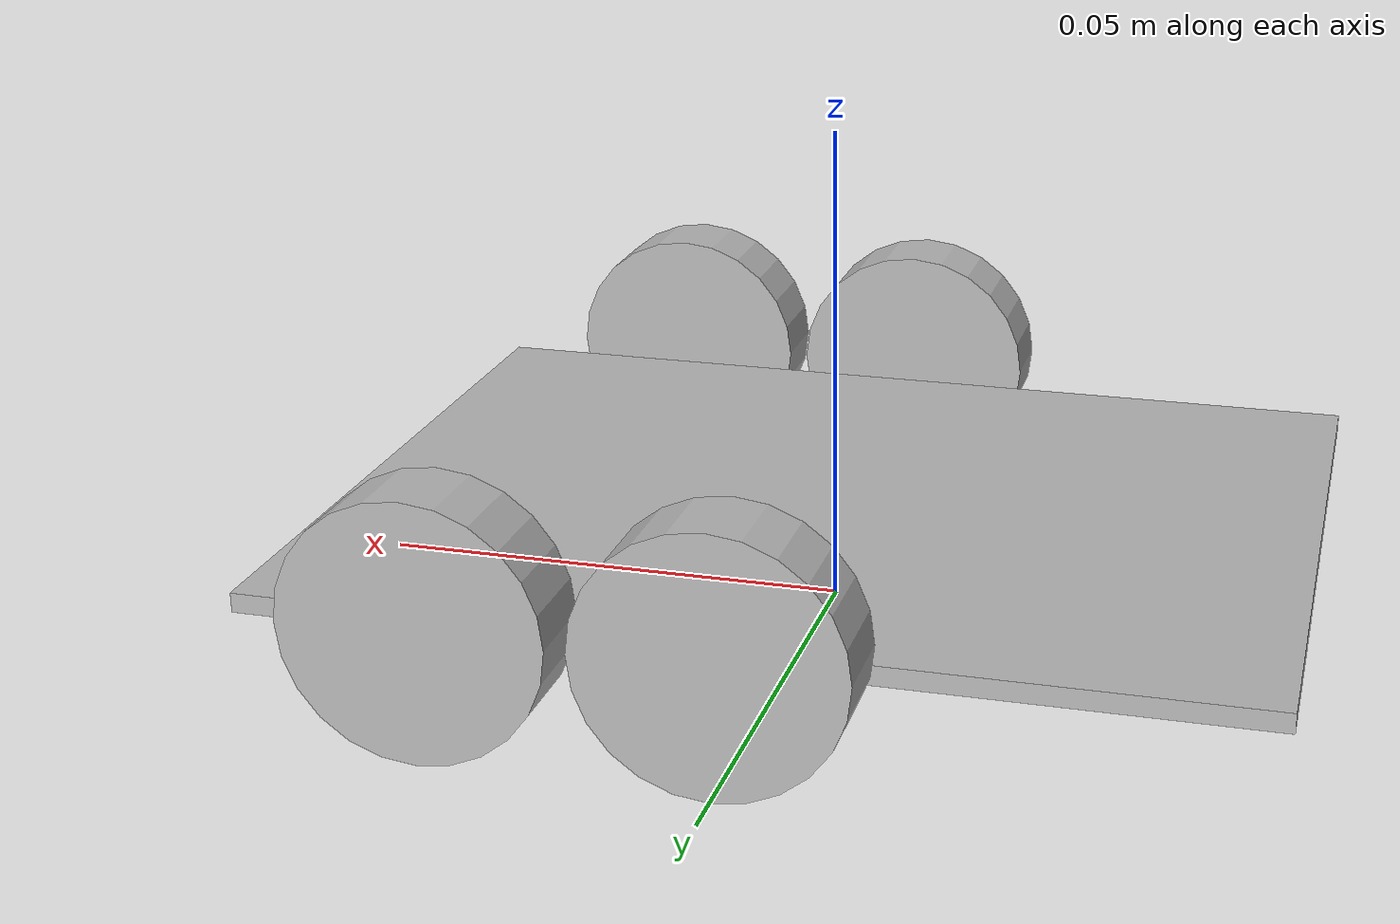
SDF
<?xml version='1.0'?>
  <sdf version='1.4'>
    <model name="micromouse">
    <static>false</static>
    <link name='chassis'>
      <pose>0 0 .01 0 0 0</pose>
      <collision name='collision'>
        <geometry>
          <box>
            <size>.1 .075 .002</size>
          </box>
        </geometry>
      </collision>
      <visual name='visual'>
        <geometry>
          <box>
            <size>.1 .075 .002</size>
          </box>
        </geometry>
      </visual>
    </link>

    <link name="left_wheel_front">
      <pose>0.00 0.04175 0.013 0 1.5707 1.5707</pose>
      <collision name="collision">
        <geometry>
          <cylinder>
            <radius>.013</radius>
            <length>.0085</length>
          </cylinder>
        </geometry>
      </collision>
      <visual name="visual">
        <geometry>
          <cylinder>
            <radius>.013</radius>
            <length>.0085</length>
          </cylinder>
        </geometry>
      </visual>
    </link>
    <link name="left_wheel_back">
      <pose>0.028 0.04175 0.013 0 1.5707 1.5707</pose>
      <collision name="collision">
        <geometry>
          <cylinder>
            <radius>.013</radius>
            <length>.0085</length>
          </cylinder>
        </geometry>
      </collision>
      <visual name="visual">
        <geometry>
          <cylinder>
            <radius>.013</radius>
            <length>.0085</length>
          </cylinder>
        </geometry>
      </visual>
    </link>

    <link name="right_wheel_front">
      <pose>0.00 -0.04175 0.013 0 1.5707 1.5707</pose>
      <collision name="collision">
        <geometry>
          <cylinder>
            <radius>.013</radius>
            <length>.0085</length>
          </cylinder>
        </geometry>
      </collision>
      <visual name="visual">
        <geometry>
          <cylinder>
            <radius>.013</radius>
            <length>.0085</length>
          </cylinder>
        </geometry>
      </visual>
    </link>
    <link name="right_wheel_back">
      <pose>0.028 -0.04175 0.013 0 1.5707 1.5707</pose>
      <collision name="collision">
        <geometry>
          <cylinder>
            <radius>.013</radius>
            <length>.0085</length>
          </cylinder>
        </geometry>
      </collision>
      <visual name="visual">
        <geometry>
          <cylinder>
            <radius>.013</radius>
            <length>.0085</length>
          </cylinder>
        </geometry>
      </visual>
    </link>

    <joint type="revolute" name="left_wheel_hinge_front">
      <pose>0 0 -0.03 0 0 0</pose>
      <child>left_wheel_front</child>
      <parent>chassis</parent>
      <axis>
        <xyz>0 -1 0</xyz>
      </axis>
    </joint>
    <joint type="revolute" name="left_wheel_hinge_back">
      <pose>0 0 -0.03 0 0 0</pose>
      <child>left_wheel_back</child>
      <parent>chassis</parent>
      <axis>
        <xyz>0 -1 0</xyz>
      </axis>
    </joint>

    <joint type="revolute" name="right_wheel_hinge_front">
      <pose>0 0 0.03 0 0 0</pose>
      <child>right_wheel_front</child>
      <parent>chassis</parent>
      <axis>
        <xyz>0 -1 0</xyz>
      </axis>
    </joint>
    <joint type="revolute" name="right_wheel_hinge_back">
      <pose>0 0 0.03 0 0 0</pose>
      <child>right_wheel_back</child>
      <parent>chassis</parent>
      <axis>
        <xyz>0 -1 0</xyz>
      </axis>
    </joint>
  </model>
</sdf>
